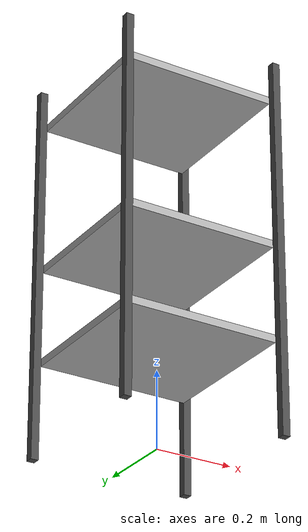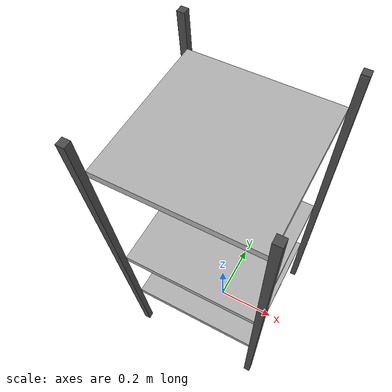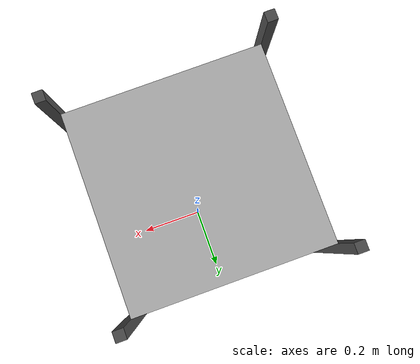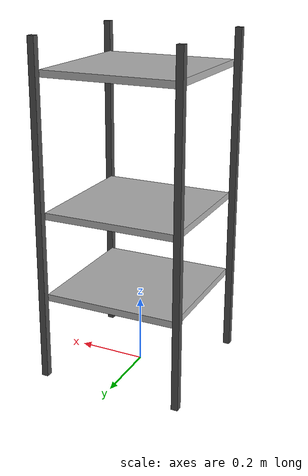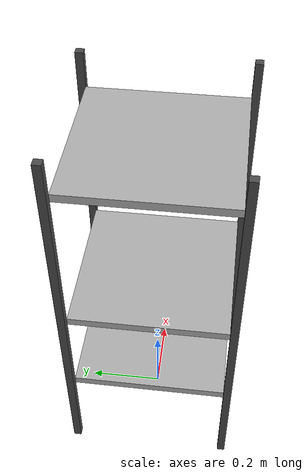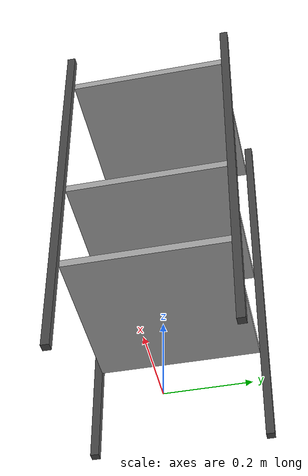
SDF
<?xml version="1.0" ?>
<sdf version="1.6">
  <model name="simple_shelf">
    <link name="link">

      <!-- Bottom shelf -->
      <visual name="bottom_shelf_visual">
        <geometry>
          <box>
            <size>0.4 0.4 0.02</size> <!-- Width, Depth, Thickness (0.4x0.4 makes it square) -->
          </box>
        </geometry>
        <pose>0 0 0.25 0 0 0</pose> <!-- Raise it slightly above the ground -->
        <material>
          <ambient>0.6 0.6 0.6 1.0</ambient>
          <diffuse>0.7 0.7 0.7 1.0</diffuse>
        </material>
      </visual>
      <collision name="bottom_shelf_collision">
        <geometry>
          <box>
            <size>0.4 0.4 0.02</size> <!-- Same size as the visual -->
          </box>
        </geometry>
        <pose>0 0 0.25 0 0 0</pose> <!-- Align with visual -->
      </collision>

      <!-- Middle shelf -->
      <visual name="middle_shelf_visual">
        <geometry>
          <box>
            <size>0.4 0.4 0.02</size> <!-- Width, Depth, Thickness -->
          </box>
        </geometry>
        <pose>0 0 0.5 0 0 0</pose> <!-- Middle shelf position -->
        <material>
          <ambient>0.6 0.6 0.6 1.0</ambient>
          <diffuse>0.7 0.7 0.7 1.0</diffuse>
        </material>
      </visual>
      <collision name="middle_shelf_collision">
        <geometry>
          <box>
            <size>0.4 0.4 0.02</size> <!-- Same size as the visual -->
          </box>
        </geometry>
        <pose>0 0 0.5 0 0 0</pose> <!-- Align with visual -->
      </collision>

      <!-- Top shelf -->
      <visual name="top_shelf_visual">
        <geometry>
          <box>
            <size>0.4 0.4 0.02</size> <!-- Width, Depth, Thickness -->
          </box>
        </geometry>
        <pose>0 0 0.9 0 0 0</pose> <!-- Top shelf position -->
        <material>
          <ambient>0.6 0.6 0.6 1.0</ambient>
          <diffuse>0.7 0.7 0.7 1.0</diffuse>
        </material>
      </visual>
      <collision name="top_shelf_collision">
        <geometry>
          <box>
            <size>0.4 0.4 0.02</size> <!-- Same size as the visual -->
          </box>
        </geometry>
        <pose>0 0 0.9 0 0 0</pose> <!-- Align with visual -->
      </collision>

      <!-- Left support -->
      <visual name="left_support_visual">
        <geometry>
          <box>
            <size>0.02 0.02 1.0</size> <!-- Thin vertical support (square support) -->
          </box>
        </geometry>
        <pose>-0.21 -0.21 0.5 0 0 0</pose> <!-- Left-back support position -->
        <material>
          <ambient>0.3 0.3 0.3 1.0</ambient>
          <diffuse>0.3 0.3 0.3 1.0</diffuse>
        </material>
      </visual>
      <collision name="left_support_collision">
        <geometry>
          <box>
            <size>0.02 0.02 1.0</size> <!-- Same size as the visual -->
          </box>
        </geometry>
        <pose>-0.21 -0.21 0.5 0 0 0</pose> <!-- Align with visual -->
      </collision>

      <!-- Right support -->
      <visual name="right_support_visual">
        <geometry>
          <box>
            <size>0.02 0.02 1.0</size> <!-- Thin vertical support (square support) -->
          </box>
        </geometry>
        <pose>0.21 -0.21 0.5 0 0 0</pose> <!-- Right-back support position -->
        <material>
          <ambient>0.3 0.3 0.3 1.0</ambient>
          <diffuse>0.3 0.3 0.3 1.0</diffuse>
        </material>
      </visual>
      <collision name="right_support_collision">
        <geometry>
          <box>
            <size>0.02 0.02 1.0</size> <!-- Same size as the visual -->
          </box>
        </geometry>
        <pose>0.21 -0.21 0.5 0 0 0</pose> <!-- Align with visual -->
      </collision>

      <!-- Front-left support -->
      <visual name="front_left_support_visual">
        <geometry>
          <box>
            <size>0.02 0.02 1.0</size> <!-- Thin vertical support (square support) -->
          </box>
        </geometry>
        <pose>-0.21 0.21 0.5 0 0 0</pose> <!-- Left-front support position -->
        <material>
          <ambient>0.3 0.3 0.3 1.0</ambient>
          <diffuse>0.3 0.3 0.3 1.0</diffuse>
        </material>
      </visual>
      <collision name="front_left_support_collision">
        <geometry>
          <box>
            <size>0.02 0.02 1.0</size> <!-- Same size as the visual -->
          </box>
        </geometry>
        <pose>-0.21 0.21 0.5 0 0 0</pose> <!-- Align with visual -->
      </collision>

      <!-- Front-right support -->
      <visual name="front_right_support_visual">
        <geometry>
          <box>
            <size>0.02 0.02 1.0</size> <!-- Thin vertical support (square support) -->
          </box>
        </geometry>
        <pose>0.21 0.21 0.5 0 0 0</pose> <!-- Right-front support position -->
        <material>
          <ambient>0.3 0.3 0.3 1.0</ambient>
          <diffuse>0.3 0.3 0.3 1.0</diffuse>
        </material>
      </visual>
      <collision name="front_right_support_collision">
        <geometry>
          <box>
            <size>0.02 0.02 1.0</size> <!-- Same size as the visual -->
          </box>
        </geometry>
        <pose>0.21 0.21 0.5 0 0 0</pose> <!-- Align with visual -->
      </collision>

    </link>
  </model>
</sdf>
